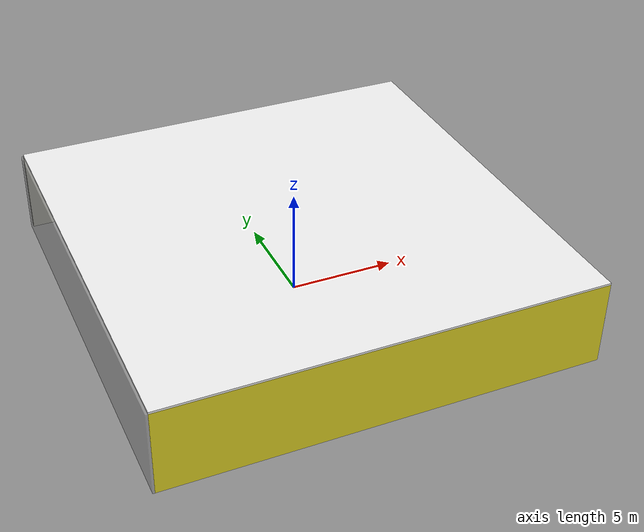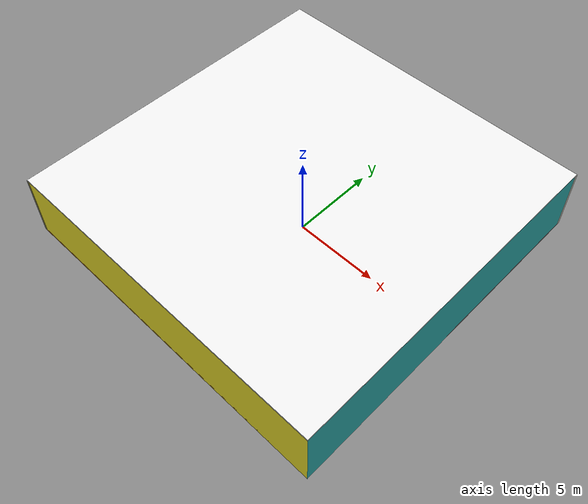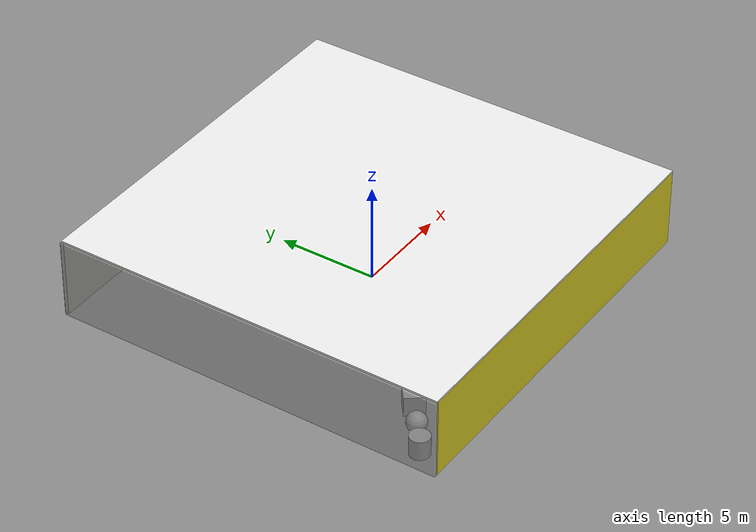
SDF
<sdf version="1.4">
 <world name="default">
  <physics type="ode">
   <max_step_size>0.001</max_step_size>
   <real_time_factor>1</real_time_factor>
   <real_time_update_rate>1000</real_time_update_rate>
   <gravity>0 0 -9.8</gravity>
  </physics>
  <scene><ambient>0.4 0.4 0.4 1</ambient><background>0.7 0.7 0.7 1</background><shadows>1</shadows></scene>
  <model name="Surrounding">
   <static>1</static>
   <link name="Ceiling">
    <collision name="Ceiling_Collision"><geometry><box><size>20 20 0.1</size></box></geometry></collision>
    <visual name="Ceiling_Visual">
     <geometry><box><size>20 20 0.1</size></box></geometry>
     <material>
      <script><uri>file://media/materials/scripts/gazebo.material</uri><name>Gazebo/White</name></script>
     </material>
    </visual>
    <pose>0 0 4.05 0 0 0</pose>
   </link>
   <link name="Wall_South">
    <collision name="Wall_South_Collision">
     <geometry><box><size>20 0 4</size></box></geometry>
     <pose>0 0 2 0 -0 0</pose>
    </collision>
    <visual name="Wall_South_Visual">
     <pose>0 0 2 0 -0 0</pose>
     <geometry><box><size>20 0 4</size></box></geometry>
     <material>
      <script><uri>file://media/materials/scripts/gazebo.material</uri><name>Gazebo/Yellow</name></script>
     </material>
    </visual>
    <velocity_decay><linear>0</linear><angular>0</angular></velocity_decay>
    <pose>0 -10 0 0 -0 0</pose>
   </link>
   <link name="Wall_East">
    <collision name="Wall_21_Collision">
     <geometry><box><size>20 0 4</size></box></geometry>
     <pose>0 0 2 0 -0 0</pose>
    </collision>
    <visual name="Wall_21_Visual">
     <pose>0 0 2 0 -0 0</pose>
     <geometry><box><size>20 0 4</size></box></geometry>
     <material>
      <script><uri>file://media/materials/scripts/gazebo.material</uri><name>Gazebo/Turquoise</name></script>
     </material>
    </visual>
    <velocity_decay><linear>0</linear><angular>0</angular></velocity_decay>
    <pose>10 0 0 0 -0 1.5708</pose>
   </link>
   <link name="Wall_North">
    <collision name="Wall_22_Collision">
     <geometry><box><size>20 0.2 4</size></box></geometry>
     <pose>0 0 2 0 -0 0</pose>
    </collision>
    <visual name="Wall_22_Visual">
     <pose>0 0 2 0 -0 0</pose>
     <geometry><box><size>20 0.2 4</size></box></geometry>
     <material>
      <script><uri>file://media/materials/scripts/gazebo.material</uri><name>Gazebo/PaintedWall</name></script>
     </material>
    </visual>
    <velocity_decay><linear>0</linear><angular>0</angular></velocity_decay>
    <pose>0 10 0 0 -0 0</pose>
   </link>
   <link name="Wall_West">
    <collision name="Wall_23_Collision">
     <geometry><box><size>20 0.2 4</size></box></geometry>
     <pose>0 0 2 0 -0 0</pose>
    </collision>
    <visual name="Wall_23_Visual">
     <pose>0 0 2 0 -0 0</pose>
     <geometry><box><size>20 0.2 4</size></box></geometry>
     <material>
      <script><uri>file://media/materials/scripts/gazebo.material</uri><name>Gazebo/GreyTransparent</name></script>
     </material>
    </visual>
    <velocity_decay><linear>0</linear><angular>0</angular></velocity_decay>
    <pose>-10 0 0 0 0 -1.5708</pose>
   </link>
   <link name="Ground_link">
    <collision name="collision">
     <pose>0 0 .05 0 -0 0</pose>
     <geometry><box><size>20 20 0.1</size></box></geometry>
    </collision>
    <visual name="visual">
     <pose>0 0 .05 0 -0 0</pose>
     <geometry><box><size>20 20 0.1</size></box></geometry>
     <material>
      <script><uri>file://media/materials/scripts/gazebo.material</uri><name>Gazebo/RedTransparent</name></script>
     </material>
    </visual>
   </link>
   <static>1</static>
  </model>
  <spherical_coordinates>
   <surface_model>EARTH_WGS84</surface_model>
   <latitude_deg>0</latitude_deg>
   <longitude_deg>0</longitude_deg>
   <elevation>0</elevation>
   <heading_deg>0</heading_deg>
  </spherical_coordinates>
  <light name="lightball_0" type="diffuse">
   <diffuse>0.8 0.8 0.8 1</diffuse>
   <specular>0.2 0.2 0.2 1</specular>
   <attenuation>
    <range>100</range>
    <constant>0.7</constant>
    <linear>0.01</linear>
    <quadratic>0.001</quadratic>
   </attenuation>
   <direction>-0.5 0.1 -0.9</direction>
   <pose>-3.29232192585 1.75976842671 2.14074636151 0 0 0</pose>
  </light>
  <light name="lightball_1" type="diffuse">
   <diffuse>0.8 0.8 0.8 1</diffuse>
   <specular>0.2 0.2 0.2 1</specular>
   <attenuation>
    <range>100</range>
    <constant>0.7</constant>
    <linear>0.01</linear>
    <quadratic>0.001</quadratic>
   </attenuation>
   <direction>-0.5 0.1 -0.9</direction>
   <pose>-9.83260773971 -5.79849930777 1.74240352845 0 0 0</pose>
  </light>
  <light name="lightball_2" type="diffuse">
   <diffuse>0.8 0.8 0.8 1</diffuse>
   <specular>0.2 0.2 0.2 1</specular>
   <attenuation>
    <range>100</range>
    <constant>0.7</constant>
    <linear>0.01</linear>
    <quadratic>0.001</quadratic>
   </attenuation>
   <direction>-0.5 0.1 -0.9</direction>
   <pose>-2.3203042167 -5.05750746133 1.83172627035 0 0 0</pose>
  </light>
  <light name="lightball_3" type="diffuse">
   <diffuse>0.8 0.8 0.8 1</diffuse>
   <specular>0.2 0.2 0.2 1</specular>
   <attenuation>
    <range>100</range>
    <constant>0.7</constant>
    <linear>0.01</linear>
    <quadratic>0.001</quadratic>
   </attenuation>
   <direction>-0.5 0.1 -0.9</direction>
   <pose>-9.52751167811 5.80247491748 2.14483247787 0 0 0</pose>
  </light>
  <light name="lightball_4" type="diffuse">
   <diffuse>0.8 0.8 0.8 1</diffuse>
   <specular>0.2 0.2 0.2 1</specular>
   <attenuation>
    <range>100</range>
    <constant>0.7</constant>
    <linear>0.01</linear>
    <quadratic>0.001</quadratic>
   </attenuation>
   <direction>-0.5 0.1 -0.9</direction>
   <pose>-1.67063987433 3.05057528702 1.37714740474 0 0 0</pose>
  </light>
  <light name="lightball_5" type="diffuse">
   <diffuse>0.8 0.8 0.8 1</diffuse>
   <specular>0.2 0.2 0.2 1</specular>
   <attenuation>
    <range>100</range>
    <constant>0.7</constant>
    <linear>0.01</linear>
    <quadratic>0.001</quadratic>
   </attenuation>
   <direction>-0.5 0.1 -0.9</direction>
   <pose>6.61584062227 9.77795711412 1.89715052472 0 0 0</pose>
  </light>
  <light name="lightball_6" type="diffuse">
   <diffuse>0.8 0.8 0.8 1</diffuse>
   <specular>0.2 0.2 0.2 1</specular>
   <attenuation>
    <range>100</range>
    <constant>0.7</constant>
    <linear>0.01</linear>
    <quadratic>0.001</quadratic>
   </attenuation>
   <direction>-0.5 0.1 -0.9</direction>
   <pose>1.35491106158 7.39333004747 3.66100070477 0 0 0</pose>
  </light>
  <light name="lightball_7" type="diffuse">
   <diffuse>0.8 0.8 0.8 1</diffuse>
   <specular>0.2 0.2 0.2 1</specular>
   <attenuation>
    <range>100</range>
    <constant>0.7</constant>
    <linear>0.01</linear>
    <quadratic>0.001</quadratic>
   </attenuation>
   <direction>-0.5 0.1 -0.9</direction>
   <pose>-5.75728759356 -6.17227560994 3.82879755415 0 0 0</pose>
  </light>
  <light name="lightball_8" type="diffuse">
   <diffuse>0.8 0.8 0.8 1</diffuse>
   <specular>0.2 0.2 0.2 1</specular>
   <attenuation>
    <range>100</range>
    <constant>0.7</constant>
    <linear>0.01</linear>
    <quadratic>0.001</quadratic>
   </attenuation>
   <direction>-0.5 0.1 -0.9</direction>
   <pose>-4.73669522213 -1.2924141923 2.44363637604 0 0 0</pose>
  </light>
  <light name="lightball_9" type="diffuse">
   <diffuse>0.8 0.8 0.8 1</diffuse>
   <specular>0.2 0.2 0.2 1</specular>
   <attenuation>
    <range>100</range>
    <constant>0.7</constant>
    <linear>0.01</linear>
    <quadratic>0.001</quadratic>
   </attenuation>
   <direction>-0.5 0.1 -0.9</direction>
   <pose>-4.39556035607 -3.07294176898 3.43379661764 0 0 0</pose>
  </light>
  <light name="lightball_10" type="diffuse">
   <diffuse>0.8 0.8 0.8 1</diffuse>
   <specular>0.2 0.2 0.2 1</specular>
   <attenuation>
    <range>100</range>
    <constant>0.7</constant>
    <linear>0.01</linear>
    <quadratic>0.001</quadratic>
   </attenuation>
   <direction>-0.5 0.1 -0.9</direction>
   <pose>-3.4036793597 2.33063246435 1.27782141381 0 0 0</pose>
  </light>
  <light name="lightball_11" type="diffuse">
   <diffuse>0.8 0.8 0.8 1</diffuse>
   <specular>0.2 0.2 0.2 1</specular>
   <attenuation>
    <range>100</range>
    <constant>0.7</constant>
    <linear>0.01</linear>
    <quadratic>0.001</quadratic>
   </attenuation>
   <direction>-0.5 0.1 -0.9</direction>
   <pose>-6.41162756073 -1.13961409087 1.93894991672 0 0 0</pose>
  </light>
  <light name="lightball_12" type="diffuse">
   <diffuse>0.8 0.8 0.8 1</diffuse>
   <specular>0.2 0.2 0.2 1</specular>
   <attenuation>
    <range>100</range>
    <constant>0.7</constant>
    <linear>0.01</linear>
    <quadratic>0.001</quadratic>
   </attenuation>
   <direction>-0.5 0.1 -0.9</direction>
   <pose>3.47173376372 -0.33829048698 2.39880514587 0 0 0</pose>
  </light>
  <include>
   <uri>model://textured_shapes</uri>
   <pose>-7.48476435472 -7.37406982923 0 0 0 2.23848780244</pose>
  </include>
  <include><uri>model://cabinet</uri><pose>-2.19749122174 1.40144181982 0 0 0 0.555272974688</pose></include>
  <include><uri>model://cabinet</uri><pose>0.90572853104 4.62659555759 0 0 0 0.983317199454</pose></include>
  <include>
   <uri>model://textured_shapes</uri>
   <pose>4.06441629509 -3.80268668445 0 0 0 1.0227528321</pose>
  </include>
  <include><uri>model://table</uri><pose>4.56177733491 6.97314130897 0 0 0 1.62640488439</pose></include>
 </world>
</sdf>

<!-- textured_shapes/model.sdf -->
<sdf version="1.6">
  <model name="textured_shapes">
    <pose>0 0 0.5 0 0 0</pose>
    <link name="box">
      <pose>0 -1.5 0 0 0 0</pose>
      <collision name="collision">
        <geometry>
          <box>
            <size>1 1 1</size>
          </box>
        </geometry>
      </collision>
      <visual name="visual">
        <geometry>
          <box>
            <size>1 1 1</size>
          </box>
        </geometry>
        <material>
          <script>
            <uri>model://../model_source/models/textured_shapes/materials/scripts</uri>
            <uri>model://../model_source/models/textured_shapes/materials/textures</uri>
            <name>TexturedShape/Squares</name>
          </script>
        </material>
      </visual>
    </link>
    <link name="sphere">
      <collision name="collision">
        <geometry>
          <sphere>
            <radius>0.5</radius>
          </sphere>
        </geometry>
      </collision>
      <visual name="visual">
        <geometry>
          <sphere>
            <radius>0.5</radius>
          </sphere>
        </geometry>
        <material>
          <script>
            <uri>model://../model_source/models/textured_shapes/materials/scripts</uri>
            <uri>model://../model_source/models/textured_shapes/materials/textures</uri>
            <name>TexturedShape/Squares</name>
          </script>
        </material>
      </visual>
    </link>
    <link name="cylinder">
      <pose>0 1.5 0 0 0 0</pose>
      <collision name="collision">
        <geometry>
          <cylinder>
            <radius>0.5</radius>
            <length>1</length>
          </cylinder>
        </geometry>
      </collision>
      <visual name="visual">
        <geometry>
          <cylinder>
            <radius>0.5</radius>
            <length>1</length>
          </cylinder>
        </geometry>
        <material>
          <script>
            <uri>model://../model_source/models/textured_shapes/materials/scripts</uri>
            <uri>model://../model_source/models/textured_shapes/materials/textures</uri>
            <name>TexturedShape/Squares</name>
          </script>
        </material>
      </visual>
    </link>
  </model>
</sdf>

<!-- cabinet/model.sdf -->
<sdf version="1.5">
  <model name="cabinet">
    <static>true</static>
    <link name="cabinet_bottom_plate">
      <inertial>
        <pose>0 0 -1 0 0 0</pose>
        <inertia>
          <ixx>2.050000</ixx>
          <ixy>0</ixy>
          <ixz>0</ixz>
          <iyy>2.050000</iyy>
          <iyz>0</iyz>
          <izz>2.050000</izz>
        </inertia>
        <mass>25.000000</mass>
      </inertial>
      <collision name="cabinet_bottom_plate_geom">
        <pose>0 0 0.010000 0 0 0</pose>
        <geometry>
          <box>
            <size>0.450000 0.450000 0.020000</size>
          </box>
        </geometry>
      </collision>
      <visual name="cabinet_bottom_plate_geom_visual">
        <pose>0 0 0.010000 0 0 0</pose>
        <geometry>
          <box>
            <size>0.450000 0.450000 0.020000</size>
          </box>
        </geometry>
        <material>
          <script>
            <uri>model://media/materials/scripts/gazebo.material</uri>
            <name>Gazebo/Wood</name>
          </script>
        </material>
      </visual>
      <collision name="cabinet_bottom_plate_geom_cabinet_back_plate">
        <pose>0.235000 0 0.510000 0 0 0</pose>
        <geometry>
          <box>
            <size>0.020000 0.450000 1.020000</size>
          </box>
        </geometry>
      </collision>
      <visual name="cabinet_bottom_plate_geom_cabinet_back_plate_visual">
        <pose>0.235000 0 0.510000 0 0 0</pose>
        <geometry>
          <box>
            <size>0.020000 0.450000 1.020000</size>
          </box>
        </geometry>
        <material>
          <script>
            <uri>model://media/materials/scripts/gazebo.material</uri>
            <name>Gazebo/Wood</name>
          </script>
        </material>
      </visual>
      <collision name="cabinet_bottom_plate_geom_cabinet_left_plate">
        <pose>0 0.235000 0.510000 0 0 0</pose>
        <geometry>
          <box>
            <size>0.450000 0.020000 1.020000</size>
          </box>
        </geometry>
      </collision>
      <visual name="cabinet_bottom_plate_geom_cabinet_left_plate_visual">
        <pose>0 0.235000 0.510000 0 0 0</pose>
        <geometry>
          <box>
            <size>0.450000 0.020000 1.020000</size>
          </box>
        </geometry>
        <material>
          <script>
            <uri>model://media/materials/scripts/gazebo.material</uri>
            <name>Gazebo/Wood</name>
          </script>
        </material>
      </visual>
      <collision name="cabinet_bottom_plate_geom_cabinet_middle_plate">
        <pose>0 0 0.510000 0 0 0</pose>
        <geometry>
          <box>
            <size>0.450000 0.450000 0.020000</size>
          </box>
        </geometry>
      </collision>
      <visual name="cabinet_bottom_plate_geom_cabinet_middle_plate_visual">
        <pose>0 0 0.510000 0 0 0</pose>
        <geometry>
          <box>
            <size>0.450000 0.450000 0.020000</size>
          </box>
        </geometry>
        <material>
          <script>
            <uri>model://media/materials/scripts/gazebo.material</uri>
            <name>Gazebo/Wood</name>
          </script>
        </material>
      </visual>
      <collision name="cabinet_bottom_plate_geom_cabinet_right_plate">
        <pose>0 -0.235000 0.510000 0 0 0</pose>
        <geometry>
          <box>
            <size>0.450000 0.020000 1.020000</size>
          </box>
        </geometry>
      </collision>
      <visual name="cabinet_bottom_plate_geom_cabinet_right_plate_visual">
        <pose>0 -0.235000 0.510000 0 0 0</pose>
        <geometry>
          <box>
            <size>0.450000 0.020000 1.020000</size>
          </box>
        </geometry>
        <material>
          <script>
            <uri>model://media/materials/scripts/gazebo.material</uri>
            <name>Gazebo/Wood</name>
          </script>
        </material>
      </visual>
      <collision name="cabinet_bottom_plate_geom_cabinet_top_plate">
        <pose>0 0 1.010000 0 0 0</pose>
        <geometry>
          <box>
            <size>0.450000 0.450000 0.020000</size>
          </box>
        </geometry>
      </collision>
      <visual name="cabinet_bottom_plate_geom_cabinet_top_plate_visual">
        <pose>0 0 1.010000 0 0 0</pose>
        <geometry>
          <box>
            <size>0.450000 0.450000 0.020000</size>
          </box>
        </geometry>
        <material>
          <script>
            <uri>model://media/materials/scripts/gazebo.material</uri>
            <name>Gazebo/Wood</name>
          </script>
        </material>
      </visual>
    </link>
  </model>
</sdf>

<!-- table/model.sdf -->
<sdf version="1.5">
  <model name="table">
    <static>true</static>
    <link name="link">
      <collision name="surface">
        <pose>0 0 1.0 0 0 0</pose>
        <geometry>
          <box>
            <size>1.5 0.8 0.03</size>
          </box>
        </geometry>
        <surface>
          <friction>
            <ode>
              <mu>0.6</mu>
              <mu2>0.6</mu2>
            </ode>
          </friction>
        </surface>
      </collision>
      <visual name="visual1">
        <pose>0 0 1.0 0 0 0</pose>
        <geometry>
          <box>
            <size>1.5 0.8 0.03</size>
          </box>
        </geometry>
        <material>
          <script>
            <uri>model://media/materials/scripts/gazebo.material</uri>
            <name>Gazebo/Wood</name>
          </script>
        </material>
      </visual>
      <collision name="front_left_leg">
        <pose>0.68 0.38 0.5 0 0 0</pose>
        <geometry>
          <cylinder>
            <radius>0.02</radius>
            <length>1.0</length>
          </cylinder>
        </geometry>
      </collision>
      <visual name="front_left_leg">
        <pose>0.68 0.38 0.5 0 0 0</pose>
        <geometry>
          <cylinder>
            <radius>0.02</radius>
            <length>1.0</length>
          </cylinder>
        </geometry>
        <material>
          <script>
            <uri>model://media/materials/scripts/gazebo.material</uri>
            <name>Gazebo/Grey</name>
          </script>
        </material>
      </visual>
      <collision name="front_right_leg">
        <pose>0.68 -0.38 0.5 0 0 0</pose>
        <geometry>
          <cylinder>
            <radius>0.02</radius>
            <length>1.0</length>
          </cylinder>
        </geometry>
      </collision>
      <visual name="front_right_leg">
        <pose>0.68 -0.38 0.5 0 0 0</pose>
        <geometry>
          <cylinder>
            <radius>0.02</radius>
            <length>1.0</length>
          </cylinder>
        </geometry>
        <material>
          <script>
            <uri>model://media/materials/scripts/gazebo.material</uri>
            <name>Gazebo/Grey</name>
          </script>
        </material>
      </visual>
      <collision name="back_right_leg">
        <pose>-0.68 -0.38 0.5 0 0 0</pose>
        <geometry>
          <cylinder>
            <radius>0.02</radius>
            <length>1.0</length>
          </cylinder>
        </geometry>
      </collision>
      <visual name="back_right_leg">
        <pose>-0.68 -0.38 0.5 0 0 0</pose>
        <geometry>
          <cylinder>
            <radius>0.02</radius>
            <length>1.0</length>
          </cylinder>
        </geometry>
        <material>
          <script>
            <uri>model://media/materials/scripts/gazebo.material</uri>
            <name>Gazebo/Grey</name>
          </script>
        </material>
      </visual>
      <collision name="back_left_leg">
        <pose>-0.68 0.38 0.5 0 0 0</pose>
        <geometry>
          <cylinder>
            <radius>0.02</radius>
            <length>1.0</length>
          </cylinder>
        </geometry>
      </collision>
      <visual name="back_left_leg">
        <pose>-0.68 0.38 0.5 0 0 0</pose>
        <geometry>
          <cylinder>
            <radius>0.02</radius>
            <length>1.0</length>
          </cylinder>
        </geometry>
        <material>
          <script>
            <uri>model://media/materials/scripts/gazebo.material</uri>
            <name>Gazebo/Grey</name>
          </script>
        </material>
      </visual>
    </link>
  </model>
</sdf>
